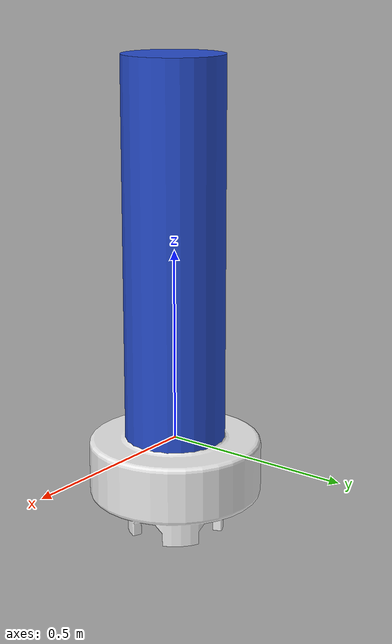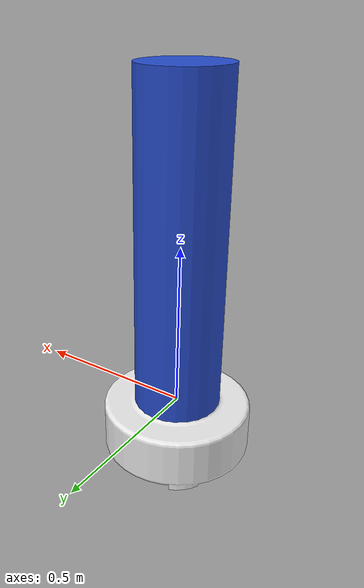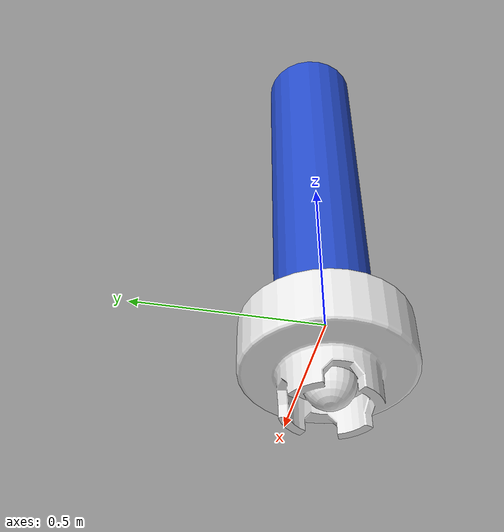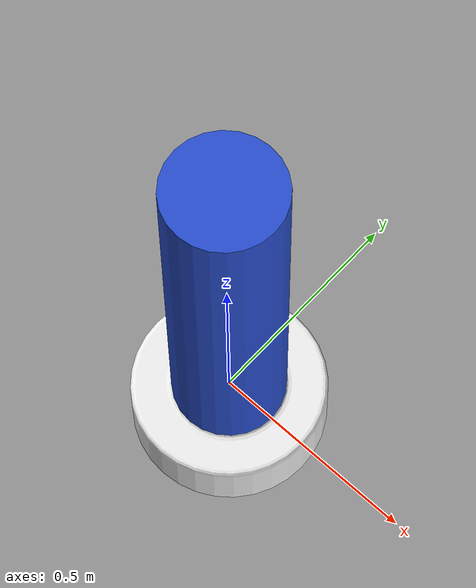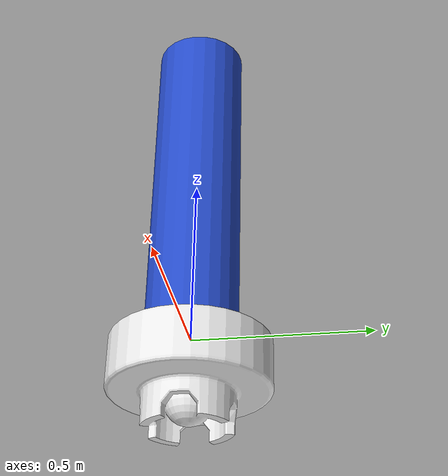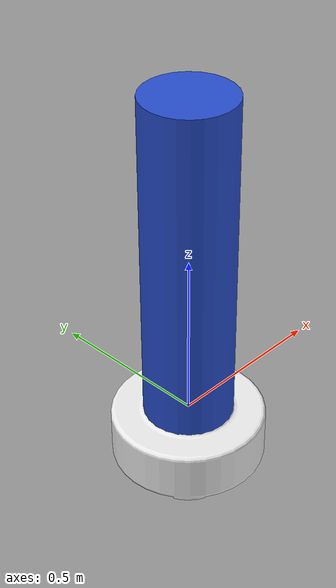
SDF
<?xml version="1.0" ?>
<sdf version="1.6">
  <model name="blue_totem">
    <link name="link">
      <inertial>
        <pose>0 0 -2 0 0 0</pose>
        <!-- Mass determined based on buoyancy geometry so object
             floats at mid-point of sphere -->
        <mass>25</mass>
        <!-- Mark only - based on cylinder -->
        <inertia>
          <ixx>1.0</ixx>
          <ixy>0</ixy>
          <ixz>0</ixz>
          <iyy>1.0</iyy>
          <iyz>0</iyz>
          <izz>0.1</izz>
        </inertia>
      </inertial>
      <collision name="collision_inner">
        <pose>0 0 0.367 0 0 0</pose>
        <geometry>
          <cylinder>
            <radius>0.13</radius>
            <length>1.25</length>
          </cylinder>
        </geometry>
      </collision>
      <collision name="collision_outer">
        <pose>0 0 -0.075 0 0 0</pose>
        <geometry>
          <cylinder>
            <radius>0.23</radius>
            <length>0.16</length>
          </cylinder>
        </geometry>
      </collision>
      <visual name="visual">
        <geometry>
          <mesh><uri>model://surmark46104/mesh/surmark46104.dae</uri></mesh>
        </geometry>
        <material>
          <script>
            <uri>file://media/materials/scripts/gazebo.material</uri>
            <name>Gazebo/White</name>
          </script>
        </material>
      </visual>
      <visual name="cover_visual">
        <pose>0 0 0.492 0 0 0</pose>
        <geometry>
          <cylinder>
            <radius>0.131</radius>
            <length>1</length>
          </cylinder>
        </geometry>
        <material>
          <script>
            <uri>file://media/materials/scripts/gazebo.material</uri>
            <name>Gazebo/Blue</name>
          </script>
        </material>
      </visual>
    </link>
    <plugin name="BuoyancyPlugin" filename="libbuoyancy_gazebo_plugin.so">
      <wave_model>ocean_waves</wave_model>
      <fluid_density>1000</fluid_density>
      <fluid_level>0.0</fluid_level>
      <linear_drag>25.0</linear_drag>
      <angular_drag>2.0</angular_drag>
      <buoyancy name="buoyancy_sphere">
        <link_name>link</link_name>
        <pose>0 0 -0.08 0 0 0</pose>
        <geometry>
          <sphere>
            <radius>0.23</radius>
          </sphere>
        </geometry>
      </buoyancy>
    </plugin>
  </model>
</sdf>
